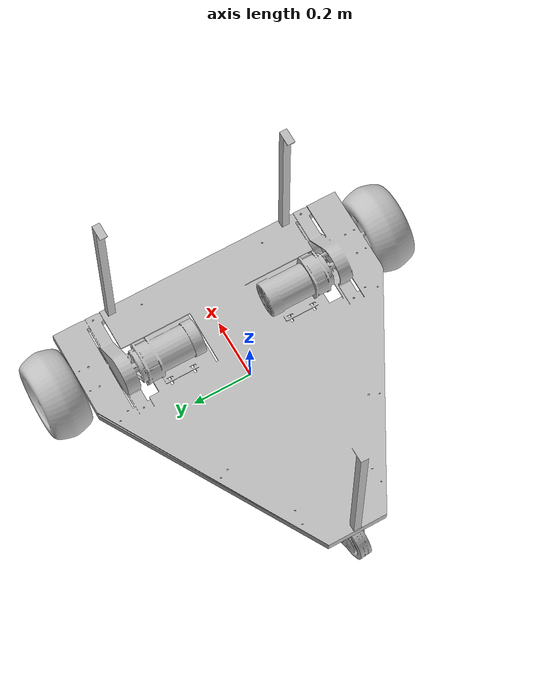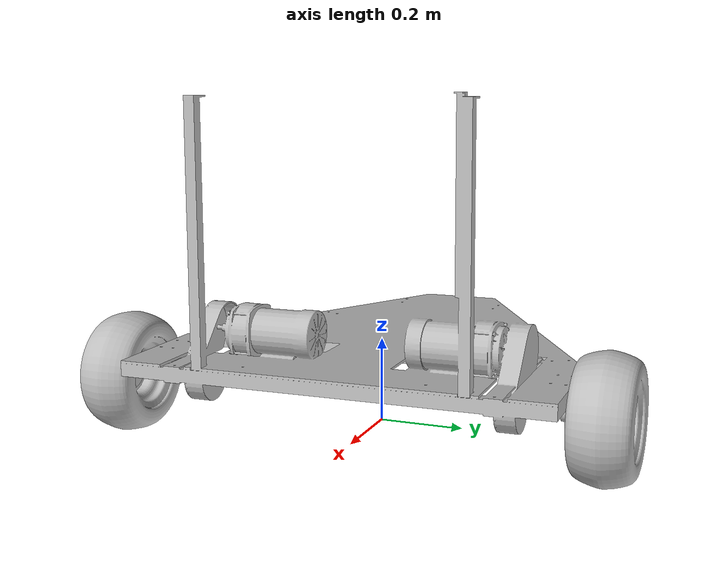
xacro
<?xml version="1.0"?>
<robot name="weeding_robot" xmlns:xacro="http://www.ros.org/wiki/xacro">
<xacro:include filename="$(find weeding_robot_description)/urdf/weeding_robot.gazebo.xacro" />

    <material name="grey">
        <color rgba="0.75 0.75 0.75 1"/>
    </material>
    <material name="blue">
        <color rgba="0 0 0.8 1"/>
    </material>
    <material name="red">
        <color rgba="0.8 0 0 1"/>
    </material>
    <material name="green">
        <color rgba="0 0.8 0 1"/>
    </material>

	<!-- * * * Link Definitions * * * -->

    <link name="base_footprint"/>

    <joint name="base_joint" type="fixed">
        <parent link="base_footprint"/>
        <child link="base_link"/>
        <origin xyz="0.0 0.0 0.150" rpy="0 0 0"/>
    </joint>

    <link name="base_link">
        <inertial>
            <origin xyz="0 0 0" rpy="0 0 0"/>
            <mass value="30" />
            <inertia ixx="3.4" ixy="0.0" ixz="0.0" iyy="3.4" iyz="0.0" izz="5.0"/>
        </inertial>

        <collision>
            <origin rpy="1.57 0 -1.57" xyz="0.345 0.5 0"/>
            <geometry>
                <mesh filename="package://weeding_robot_description/models/BodycollisionBox.STL" scale="0.001 0.001 0.001"/>
            </geometry>
        </collision>

        <visual>
            <origin rpy="1.57 0 -1.57" xyz="0.345 0.585  -0.082"/>
            <geometry>
                <mesh filename="package://weeding_robot_description/models/WeedingRobotBodyV3.STL" scale="0.001 0.001 0.001"/>
            </geometry>

            <material name="grey"/>

        </visual>
    </link>

    <link name="left_wheel">
        <inertial>
            <origin xyz="0 0 0" rpy="0 0 0"/>
            <mass value="2.9" />
            <inertia ixx="0.0269397916667" ixy="0.0" ixz="0.0" iyy="0.0269397916667" iyz="0.0" izz="0.04440625"/>
        </inertial>

        <collision>
            <origin rpy="0 0 1.57" xyz="0.07 -0.175 -0.175"/>
            <geometry>
                <mesh filename="package://weeding_robot_description/models/wheelcollisionBox.STL" scale="0.001 0.001 0.001"/>
            </geometry>
        </collision>

        <visual>
            <origin rpy="1.57 0 0" xyz="-0.0677 0.142 -0.1420"/>
            <geometry>
                <mesh filename="package://weeding_robot_description/models/wheel.STL" scale="0.001 0.001 0.001"/>
            </geometry>

            <material name="grey"/>

        </visual>
    </link>

    <joint name="left_wheel_joint" type="continuous">
    	<parent link="base_link"/>
    	<child link="left_wheel"/>
        <origin xyz="0.195 0.572 -0.03" rpy="0 3.14 -1.57"/>
        <axis xyz="1 0 0"/>
	</joint>

    <transmission name="left_wheel_tran">
        <type>transmission_interface/SimpleTransmission</type>
        <joint name="left_wheel_joint">
            <hardwareInterface>hardware_interface/VelocityJointInterface</hardwareInterface>
        </joint>
        <actuator name="left_motor">
            <hardwareInterface>hardware_interface/VelocityJointInterface</hardwareInterface>
            <mechanicalReduction>1</mechanicalReduction>
        </actuator>
    </transmission>

    <link name="right_wheel">
        <inertial>
            <origin xyz="0 0 0" rpy="0 0 0"/>
            <mass value="2.9" />
            <inertia ixx="0.0269397916667" ixy="0.0" ixz="0.0" iyy="0.0269397916667" iyz="0.0" izz="0.04440625"/>
        </inertial>

        <collision>
            <origin rpy="0 0 1.57" xyz="0.07 -0.175 -0.175"/>
            <geometry>
                <mesh filename="package://weeding_robot_description/models/wheelcollisionBox.STL" scale="0.001 0.001 0.001"/>
            </geometry>
        </collision>

        <visual>
            <origin rpy="1.57 0 0" xyz="-0.0677 0.142 -0.1420"/>
            <geometry>
                <mesh filename="package://weeding_robot_description/models/wheel.STL" scale="0.001 0.001 0.001"/>
            </geometry>

            <material name="grey"/>

        </visual>
    </link>

    <joint name="right_wheel_joint" type="continuous">
    	<parent link="base_link"/>
    	<child link="right_wheel"/>
        <origin xyz="0.195 -0.572 -0.03" rpy="0 3.14 -1.57"/>
        <axis xyz="1 0 0"/>
	</joint>

    <transmission name="right_wheel_tran">
        <type>transmission_interface/SimpleTransmission</type>
        <joint name="right_wheel_joint">
            <hardwareInterface>hardware_interface/VelocityJointInterface</hardwareInterface>
        </joint>
        <actuator name="right_motor">
            <hardwareInterface>hardware_interface/VelocityJointInterface</hardwareInterface>
            <mechanicalReduction>1</mechanicalReduction>
        </actuator>
    </transmission>

    <link name="back_wheel">
        <inertial>
            <origin xyz="0 0 0" rpy="0 0 0"/>
            <mass value="2.9" />
            <inertia ixx="0.0269397916667" ixy="0.0" ixz="0.0" iyy="0.0269397916667" iyz="0.0" izz="0.04440625"/>
        </inertial>

        <collision>
            <origin rpy="0 0 1.57" xyz="0.07 -0.175 -0.125"/>
            <geometry>
                <mesh filename="package://weeding_robot_description/models/wheelcollisionBox.STL" scale="0.001 0.001 0.001"/>
            </geometry>
        </collision>

        <visual>
            <origin rpy="1.5 0 0.1" xyz="-0.085 0.145 -0.125"/>
            <geometry>
                <mesh filename="package://weeding_robot_description/models/back_wheel.STL" scale="0.001 0.001 0.001"/>
            </geometry>

            <material name="grey"/>

        </visual>
    </link>

    <joint name="back_wheel_joint" type="fixed">
    	<parent link="base_link"/>
    	<child link="back_wheel"/>
        <origin xyz="-0.63 0 -0.085" rpy="0 0 -1.57"/>
        <axis xyz="1 0 0"/>
	</joint>

    <link name="base_imu_link">
    <inertial>
        <mass value="0.001"/>
        <origin rpy="0 0 0" xyz="0 0 0"/>
        <inertia ixx="0.0001" ixy="0" ixz="0" iyy="0.000001" iyz="0" izz="0.0001"/>
    </inertial>
    <visual>
        <origin rpy="0 0 0" xyz="0 0 0"/>
        <geometry>
        <box size="0.001 0.001 0.001"/>
        </geometry>
    </visual>
    <collision>
        <origin rpy="0 0 0" xyz="0 0 0"/>
        <geometry>
        <box size=".001 .001 .001"/>
        </geometry>
    </collision>
    </link>

    <joint name="base_imu_joint" type="fixed">
        <parent link="base_link"/>
        <child link="base_imu_link"/>
        <origin xyz="0.3 0.0 0" rpy="3.14 0 1.57"/>
    </joint>

</robot>
